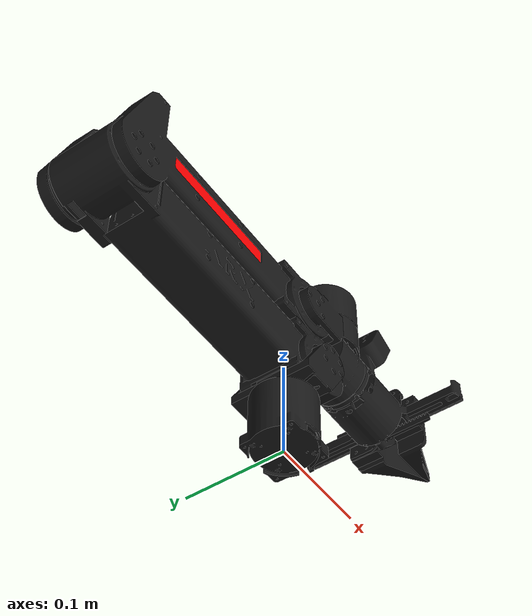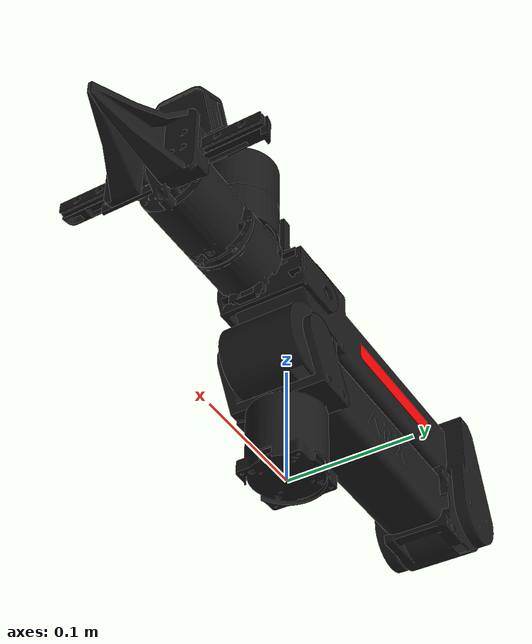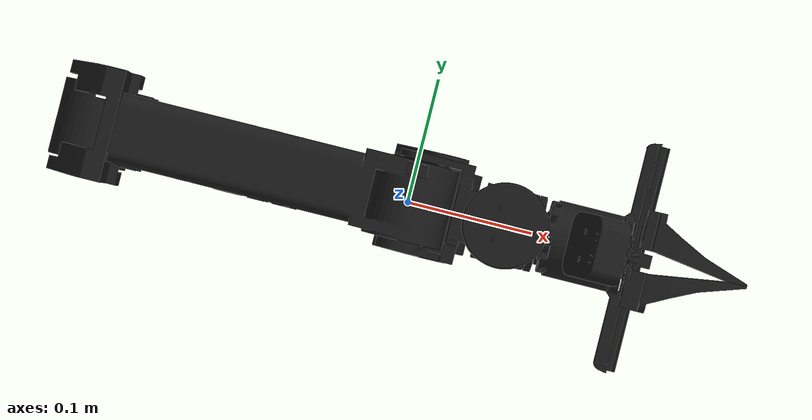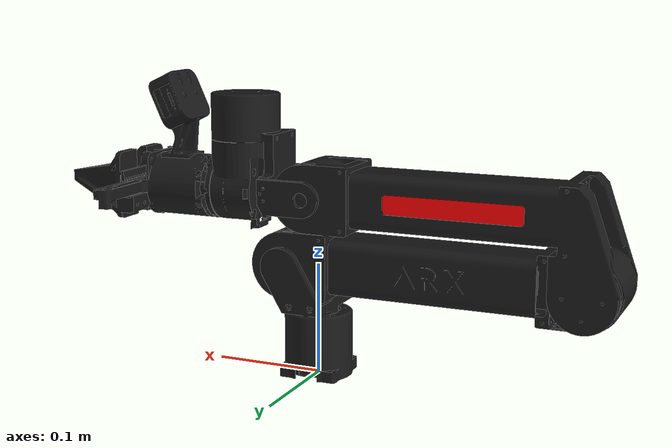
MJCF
<mujoco model="ARX L5">
  <compiler angle="radian" meshdir="assets"/>

  <option integrator="implicitfast" cone="elliptic" impratio="10"/>

  <default>
    <default class="arx_l5">
      <joint frictionloss="0.3" armature="0.005"/>
      <position inheritrange="1" forcerange="-100 100"/>
      <default class="finger">
        <joint frictionloss="0" type="slide"/>
        <position forcerange="-10 10"/>
      </default>
      <default class="visual">
        <geom group="2" type="mesh" contype="0" conaffinity="0" density="0"/>
      </default>
      <default class="collision">
        <geom group="3" type="capsule"/>
      </default>
    </default>
  </default>

  <asset>
    <material name="black_mat" rgba="0.1 0.1 0.1 1"/>

    <mesh name="base_link" file="base_link.obj"/>
    <mesh name="link1" file="link1.obj"/>
    <mesh name="link2" file="link2.obj"/>
    <mesh name="link3" file="link3.obj"/>
    <mesh name="link4" file="link4.obj"/>
    <mesh name="link5" file="link5.obj"/>
    <mesh name="link6" file="link6.obj"/>
    <mesh name="link7" file="link7.obj"/>
    <mesh name="link8" file="link8.obj"/>
    <mesh name="camera" file="camera.obj"/>
  </asset>

  <worldbody>
    <body name="base_link">
      <geom mesh="base_link" material="black_mat" class="visual"/>
      <geom mesh="base_link" class="collision"/>
      <body name="link1" pos="0 0 0.0565">
        <inertial pos="0.0050395 -0.0077407 0.020897" quat="0.632157 0.714526 -0.263733 0.142391" mass="0.096804"
          diaginertia="0.000118945 9.40205e-05 4.70346e-05"/>
        <joint name="joint1" axis="0 0 1" range="-3.14 3.14"/>
        <geom mesh="link1" material="black_mat" class="visual"/>
        <geom mesh="link1" class="collision"/>
        <body name="link2" pos="0.02 0 0.047">
          <inertial pos="-0.12992 -0.0011822 -2.6366e-05" quat="0.501263 0.501263 0.498734 0.498734" mass="1.1988"
            diaginertia="0.0164704 0.01646 0.000649595"/>
          <joint name="joint2" axis="0 1 0" range="0 3.14"/>
          <geom mesh="link2" material="black_mat" class="visual"/>
          <geom mesh="link2" class="collision"/>
          <body name="link3" pos="-0.264 0 0" quat="-3.67321e-06 -1 0 0">
            <inertial pos="0.16181 0.0011723 -0.05455" quat="0.518857 0.484372 0.465704 0.52848" mass="0.84082"
              diaginertia="0.0084909 0.00841207 0.000747034"/>
            <joint name="joint3" axis="0 1 0" range="0 3.14"/>
            <geom mesh="link3" material="black_mat" class="visual"/>
            <geom mesh="link3" class="collision"/>
            <geom type="box" size="0.062 0.001 0.01" pos="0.112 -0.025 -0.06" rgba="1 0 0 1" class="visual"/>
            <geom type="box" size="0.062 0.001 0.01" pos="0.112 0.023 -0.06" rgba="1 0 0 1" class="visual"/>
            <body name="link4" pos="0.245 -5e-05 -0.06">
              <inertial pos="0.041751 0.0054236 -0.03337" quat="0.919386 -0.0641253 0.311071 -0.23206" mass="0.12432"
                diaginertia="0.000303193 0.000235316 0.000101491"/>
              <joint name="joint4" axis="0 1 0" range="-1.7 1.7"/>
              <geom mesh="link4" material="black_mat" class="visual"/>
              <geom mesh="link4" class="collision"/>
              <body name="link5" pos="0.073914 5e-05 -0.083391">
                <inertial pos="-8.3435e-05 -1.5428e-05 0.052216" quat="0.998247 0 -0.0591776 0" mass="0.63601"
                  diaginertia="0.000848329 0.00082 0.000251671"/>
                <joint name="joint5" axis="0 0 1" range="-1.7 1.7"/>
                <geom mesh="link5" material="black_mat" class="visual"/>
                <geom mesh="link5" class="collision"/>
                <body name="link6" pos="0.025286 0 0.083391" quat="-3.67321e-06 1 0 0">
                  <inertial pos="0.041697 2.4368e-05 0.00014464" quat="0.5 0.5 -0.5 0.5" mass="0.44089"
                    diaginertia="0.0005 0.00038 0.00028"/>
                  <joint name="joint6" axis="1 0 0" range="-3.14 3.14"/>
                  <geom mesh="link6" material="black_mat" class="visual"/>
                  <geom mesh="link6" class="collision"/>
                  <geom mesh="camera" pos="0.06 0 -0.01" quat="-1 0 0 1" material="black_mat" class="visual"/>
                  <geom mesh="camera" pos="0.06 0 -0.01" quat="-1 0 0 1" class="collision"/>
                  <camera name="wrist_cam" pos="0.0475 0 0.075" mode="fixed" euler="0 -1.1 -1.5708"
                    focal="1.93e-3 1.93e-3" resolution="1280 720" sensorsize="3896e-6 2140e-6"/>
                  <body name="link7" pos="0.08657 0.024896 -0.0002436" gravcomp="1">
                    <inertial pos="-0.00035522 -0.007827 -0.0029883" quat="0.5 0.5 0.5 0.5" mass="0.064798"
                      diaginertia="3e-05 3e-05 2e-05"/>
                    <joint name="joint7" axis="0 1 0" class="finger" range="0 0.044"/>
                    <geom mesh="link7" material="black_mat" class="visual"/>
                    <geom type="box" size=".02 .002 .00525" pos="0.05 -0.023 0" rgba="1 0 0 1" class="collision"/>
                    <geom type="box" size=".015 .002 .018" pos="0.015 -0.023 0" rgba="0 0 1 1" class="collision"/>
                  </body>
                  <body name="link8" pos="0.08657 -0.0249 -0.00024366" gravcomp="1">
                    <inertial pos="-0.000355223 0.00782769 0.00242006" quat="0.5 0.5 0.5 0.5" mass="0.0647982"
                      diaginertia="3e-05 3e-05 2e-05"/>
                    <joint name="joint8" axis="0 1 0" class="finger" range="-0.044 0"/>
                    <geom mesh="link8" material="black_mat" class="visual"/>
                    <geom type="box" size=".02 .002 .00525" pos="0.05 0.023 0" rgba="1 0 0 1" class="collision"/>
                    <geom type="box" size=".015 .002 .018" pos="0.015 0.023 0" rgba="0 0 1 1" class="collision"/>
                  </body>
                </body>
              </body>
            </body>
          </body>
        </body>
      </body>
    </body>
  </worldbody>

  <contact>
    <exclude body1="base_link" body2="link1"/>
  </contact>

  <equality>
    <joint joint1="joint7" joint2="joint8" polycoef="0 -1 0 0 0"/>
  </equality>

  <actuator>
    <position name="joint1" joint="joint1" class="arx_l5" kp="80" kv="5"/>
    <position name="joint2" joint="joint2" class="arx_l5" kp="80" kv="5"/>
    <position name="joint3" joint="joint3" class="arx_l5" kp="80" kv="5"/>
    <position name="joint4" joint="joint4" class="arx_l5" kp="40" kv="5"/>
    <position name="joint5" joint="joint5" class="arx_l5" kp="10" kv="1.5"/>
    <position name="joint6" joint="joint6" class="arx_l5" kp="10" kv="1.5"/>
    <position name="gripper" joint="joint7" class="finger" kp="40" kv="5"/>
  </actuator>

  <keyframe>
    <key name="home" qpos="0 0.251 0.314 0 0 0 0.044 -0.044" ctrl="0 0.251 0.314 0 0 0 0.044"/>
  </keyframe>
</mujoco>
